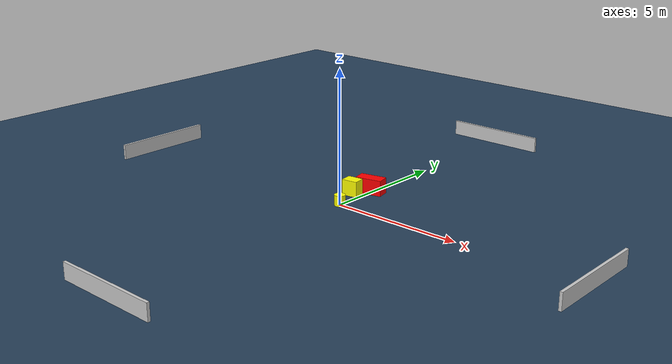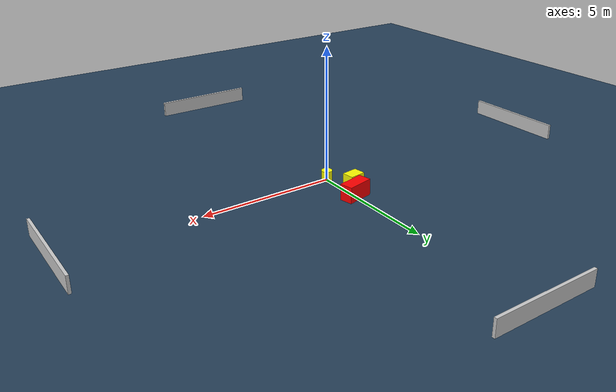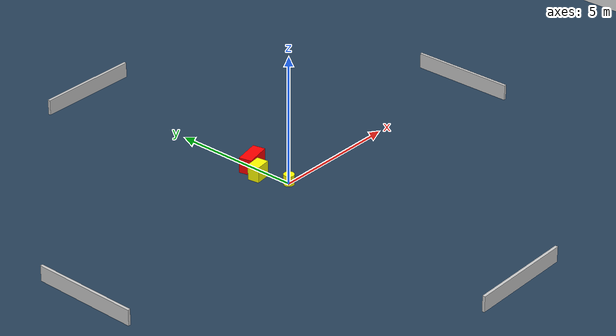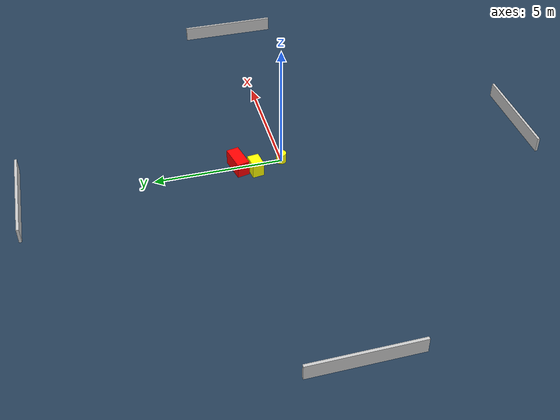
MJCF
<?xml version="1.0" ?>
<mujoco model="generated_environment">
  <option timestep="0.01" integrator="RK4" cone="elliptic"/>
  <default>
    <geom density="1"/>
  </default>
  <asset>
    <texture builtin="gradient" height="3072" name="skybox" rgb1="0.3 0.5 0.7" rgb2="0 0 0" type="skybox" width="512"/>
    <texture builtin="checker" height="300" name="groundplane" rgb1="0.2 0.3 0.4" rgb2="0.1 0.2 0.3" type="2d" width="300"/>
    <material name="groundplane" reflectance="0.2" texrepeat="5 5" texture="groundplane"/>
  </asset>
  <worldbody>
    <light dir="0 0 -1" directional="true" pos="0 0 1.5"/>
    <geom condim="3" friction="0.5 0.005 0.001" material="groundplane" name="floor" pos="0 0 0" size="0 0 0.05" type="plane"/>
    <body name="walls">
      <geom name="wall_1" condim="4" pos="-10.0 0.0 0.3" rgba="0.800000011920929 0.800000011920929 0.800000011920929 1.0" size="0.05 2.0 0.3" type="box"/>
      <geom name="wall_2" condim="4" pos="10.0 0.0 0.3" rgba="0.800000011920929 0.800000011920929 0.800000011920929 1.0" size="0.05 2.0 0.3" type="box"/>
      <geom name="wall_3" condim="4" pos="0.0 -10.0 0.3" rgba="0.800000011920929 0.800000011920929 0.800000011920929 1.0" size="2.0 0.05 0.3" type="box"/>
      <geom name="wall_4" condim="4" pos="0.0 10.0 0.3" rgba="0.800000011920929 0.800000011920929 0.800000011920929 1.0" size="2.0 0.05 0.3" type="box"/>
    </body>
    <body name="robot">
      <joint name="joint_x" type="slide" pos="0 0 0" axis="1 0 0"/>
      <joint name="joint_y" type="slide" pos="0 0 0" axis="0 1 0"/>
      <geom name="robot" type="cylinder" pos="0.0 0.0 0.2" size="0.2 0.2 0.0" mass="5.0" friction="1.0 0.005 0.0001" condim="4" rgba="1.0 1.0 0.0 1.0"/>
    </body>
    <body name="obstacle_1_movable">
      <geom name="obstacle_1_movable" condim="4" pos="-0.3805522320271813 1.1167095207166107 0.3" euler="0 0 277.7110836993231" friction="0.0 0.005 0.001" rgba="1.0 1.0 0.0 1.0" size="0.22450428975014208 0.3031772557063032 0.3" type="box" mass="0.1"/>
      <joint type="free"/>
    </body>
    <body name="obstacle_2_static">
      <geom name="obstacle_2_static" condim="4" pos="-0.0007269213576739586 1.7267944599737166 0.3" euler="0 0 102.68847546223833" friction="0.0 0.005 0.001" rgba="1.0 0.0 0.0 1.0" size="0.2433883960454422 0.5081349134081732 0.3" type="box"/>
    </body>
  </worldbody>
  <actuator>
    <motor name="actuator_x" joint="joint_x" gear="1" ctrlrange="-1 1"/>
    <motor name="actuator_y" joint="joint_y" gear="1" ctrlrange="-1 1"/>
  </actuator>
</mujoco>
